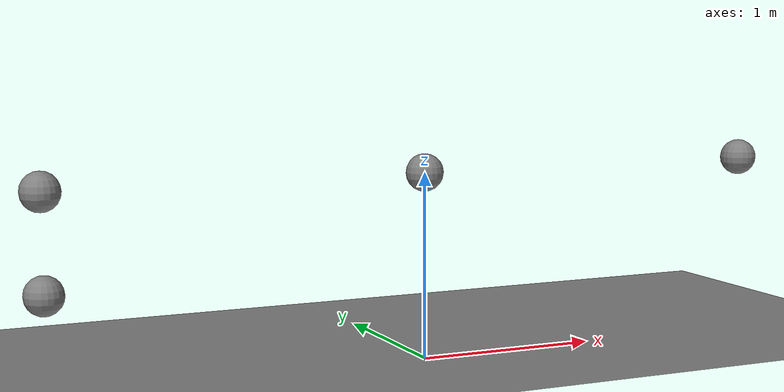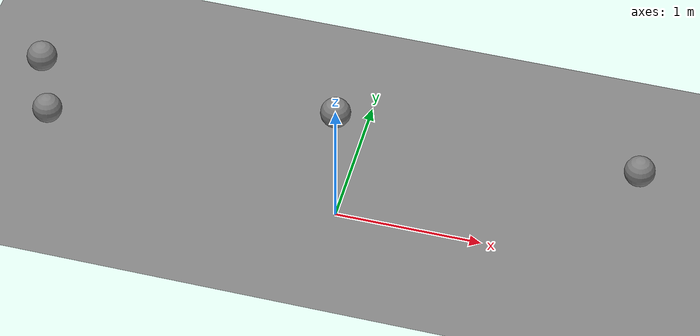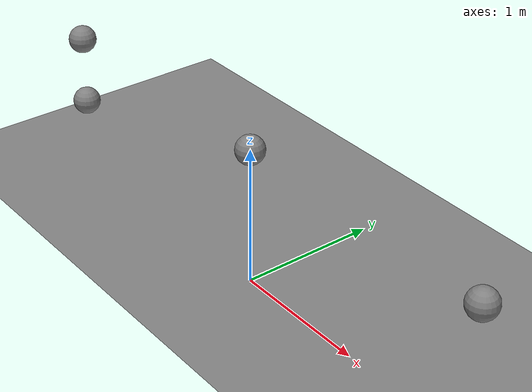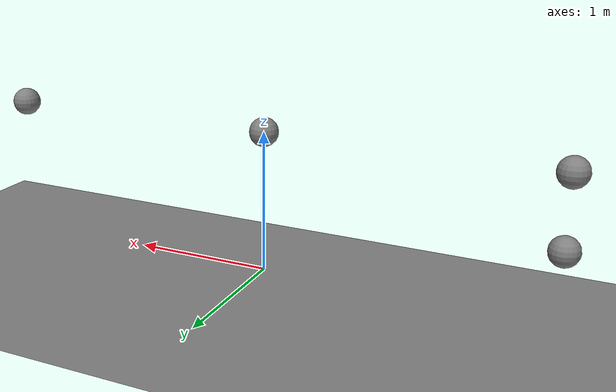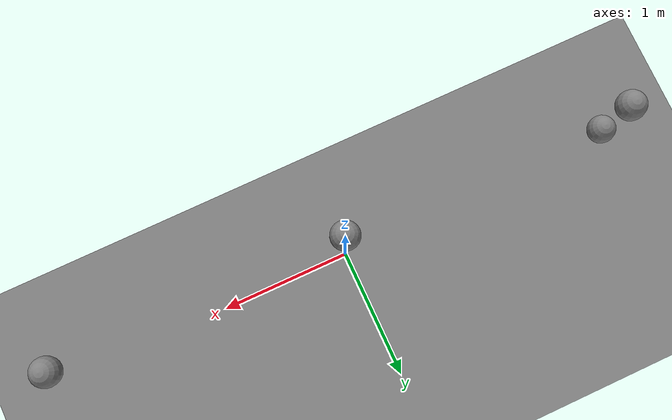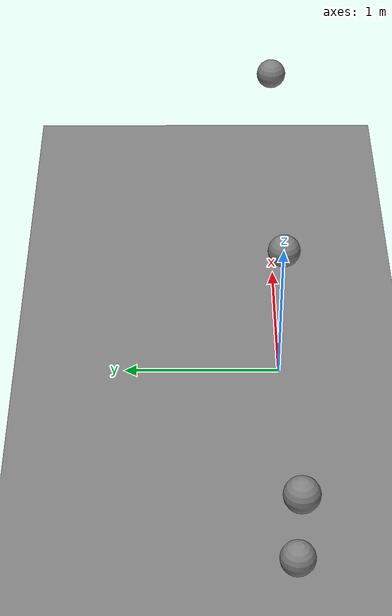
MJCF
<mujoco model="three_trees">
        <option gravity="0 0 -9.81" timestep="0.002">
            <flag sleep="enable"/>
        </option>
        <worldbody>
            <geom type="plane" size="5 5 0.1"/>
            <body name="chain_a" pos="-2 0 1">
                <joint name="hinge_a" type="hinge" axis="0 1 0"/>
                <geom type="sphere" size="0.1" mass="1.0"/>
                <body name="chain_a_child" pos="0 0 -0.5">
                    <joint name="hinge_a2" type="hinge" axis="0 1 0"/>
                    <geom type="sphere" size="0.1" mass="0.5"/>
                </body>
            </body>
            <body name="chain_b" pos="0 0 1">
                <joint name="hinge_b" type="hinge" axis="0 1 0"/>
                <geom type="sphere" size="0.1" mass="1.0"/>
            </body>
            <body name="chain_c" pos="2 0 1">
                <joint name="hinge_c" type="hinge" axis="0 1 0"/>
                <geom type="sphere" size="0.1" mass="1.0"/>
            </body>
        </worldbody>
    </mujoco>
